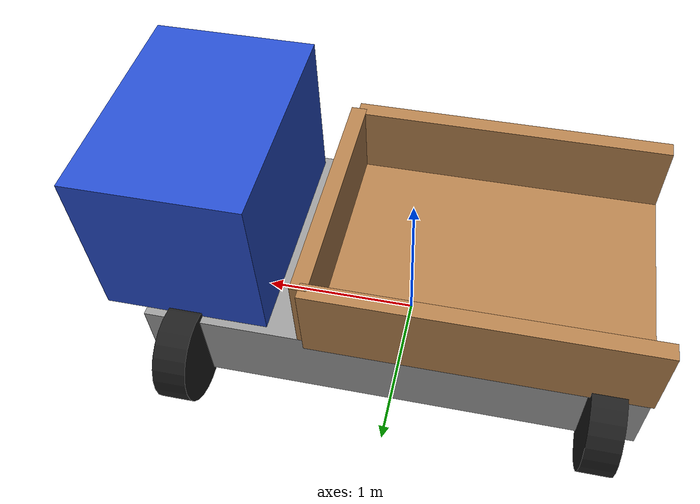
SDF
<?xml version="1.0" ?>
<sdf version="1.6">
  <model name="car_robot">
    <static>false</static>

    <!-- Base Link - Truck Chassis -->
    <link name="base_link">
      <pose>0 0 0.3 0 0 0</pose>
      <inertial>
        <mass>500.0</mass>
        <inertia>
          <ixx>100.0</ixx>
          <ixy>0.0</ixy>
          <ixz>0.0</ixz>
          <iyy>250.0</iyy>
          <iyz>0.0</iyz>
          <izz>300.0</izz>
        </inertia>
      </inertial>

      <!-- Main Chassis -->
      <visual name="chassis">
        <geometry>
          <box>
            <size>3.0 1.5 0.5</size>
          </box>
        </geometry>
        <material>
          <script>
            <uri>file://media/materials/scripts/gazebo.material</uri>
            <name>Gazebo/Grey</name>
          </script>
        </material>
      </visual>

      <!-- Cargo Bed -->
      <visual name="cargo_bed">
        <pose>-0.5 0 0.25 0 0 0</pose>
        <geometry>
          <box>
            <size>2.0 1.5 0.1</size>
          </box>
        </geometry>
        <material>
          <script>
            <uri>file://media/materials/scripts/gazebo.material</uri>
            <name>Gazebo/Wood</name>
          </script>
        </material>
      </visual>

      <!-- Cargo Bed Walls -->
      <visual name="front_wall">
        <pose>0.5 0 0.5 0 0 0</pose>
        <geometry>
          <box>
            <size>0.1 1.5 0.5</size>
          </box>
        </geometry>
        <material>
          <script>
            <uri>file://media/materials/scripts/gazebo.material</uri>
            <name>Gazebo/Wood</name>
          </script>
        </material>
      </visual>

      <visual name="left_wall">
        <pose>-0.5 0.75 0.5 0 0 0</pose>
        <geometry>
          <box>
            <size>2.0 0.1 0.5</size>
          </box>
        </geometry>
        <material>
          <script>
            <uri>file://media/materials/scripts/gazebo.material</uri>
            <name>Gazebo/Wood</name>
          </script>
        </material>
      </visual>

      <visual name="right_wall">
        <pose>-0.5 -0.75 0.5 0 0 0</pose>
        <geometry>
          <box>
            <size>2.0 0.1 0.5</size>
          </box>
        </geometry>
        <material>
          <script>
            <uri>file://media/materials/scripts/gazebo.material</uri>
            <name>Gazebo/Wood</name>
          </script>
        </material>
      </visual>

      <!-- Driver Cabin -->
      <visual name="cabin">
        <pose>1.25 0 0.75 0 0 0</pose>
        <geometry>
          <box>
            <size>1.0 1.4 1.0</size>
          </box>
        </geometry>
        <material>
          <script>
            <uri>file://media/materials/scripts/gazebo.material</uri>
            <name>Gazebo/Blue</name>
          </script>
        </material>
      </visual>

      <collision name="collision">
        <geometry>
          <box>
            <size>3.0 1.5 0.5</size>
          </box>
        </geometry>
      </collision>

      <!-- Sensors -->
      <sensor name="lidar" type="ray">
        <pose>1.5 0 1.0 0 0 0</pose>
        <visualize>true</visualize>
        <update_rate>10</update_rate>
        <ray>
          <scan>
            <horizontal>
              <samples>360</samples>
              <resolution>1</resolution>
              <min_angle>-3.14159</min_angle>
              <max_angle>3.14159</max_angle>
            </horizontal>
          </scan>
          <range>
            <min>0.1</min>
            <max>30.0</max>
            <resolution>0.01</resolution>
          </range>
        </ray>
      </sensor>

      <sensor name="camera" type="camera">
        <pose>1.5 0 1.0 0 0 0</pose>
        <camera>
          <horizontal_fov>1.047</horizontal_fov>
          <image>
            <width>640</width>
            <height>480</height>
          </image>
          <clip>
            <near>0.1</near>
            <far>100</far>
          </clip>
        </camera>
        <always_on>1</always_on>
        <update_rate>30</update_rate>
        <visualize>true</visualize>
      </sensor>

      <sensor name="rear_sonar" type="ray">
        <pose>-1.5 0 0.5 0 0 3.14159</pose>
        <visualize>true</visualize>
        <update_rate>5</update_rate>
        <ray>
          <scan>
            <horizontal>
              <samples>5</samples>
              <resolution>1</resolution>
              <min_angle>-0.2</min_angle>
              <max_angle>0.2</max_angle>
            </horizontal>
          </scan>
          <range>
            <min>0.1</min>
            <max>5.0</max>
            <resolution>0.01</resolution>
          </range>
        </ray>
      </sensor>
    </link>

    <!-- Wheels -->
    <!-- Front Left Wheel -->
    <link name="wheel_fl">
      <pose>1.25 0.8 0.3 0 1.5707 0</pose> <!-- Fixed: 90° around Y -->
      <inertial>
        <mass>20.0</mass>
        <inertia>
          <ixx>0.5</ixx>
          <ixy>0.0</ixy>
          <ixz>0.0</ixz>
          <iyy>0.5</iyy>
          <iyz>0.0</iyz>
          <izz>1.0</izz>
        </inertia>
      </inertial>
      <visual name="visual">
        <geometry>
          <cylinder>
            <radius>0.3</radius>
            <length>0.2</length>
          </cylinder>
        </geometry>
        <material>
          <script>
            <uri>file://media/materials/scripts/gazebo.material</uri>
            <name>Gazebo/Black</name>
          </script>
        </material>
      </visual>
      <collision name="collision">
        <geometry>
          <cylinder>
            <radius>0.3</radius>
            <length>0.2</length>
          </cylinder>
        </geometry>
        <surface>
          <friction>
            <ode>
              <mu>1.0</mu>
              <mu2>1.0</mu2>
            </ode>
          </friction>
        </surface>
      </collision>
    </link>

    <!-- Front Right Wheel -->
    <link name="wheel_fr">
      <pose>1.25 -0.8 0.3 0 1.5707 0</pose> <!-- Fixed: 90° around Y -->
      <inertial>
        <mass>20.0</mass>
        <inertia>
          <ixx>0.5</ixx>
          <ixy>0.0</ixy>
          <ixz>0.0</ixz>
          <iyy>0.5</iyy>
          <iyz>0.0</iyz>
          <izz>1.0</izz>
        </inertia>
      </inertial>
      <visual name="visual">
        <geometry>
          <cylinder>
            <radius>0.3</radius>
            <length>0.2</length>
          </cylinder>
        </geometry>
        <material>
          <script>
            <uri>file://media/materials/scripts/gazebo.material</uri>
            <name>Gazebo/Black</name>
          </script>
        </material>
      </visual>
      <collision name="collision">
        <geometry>
          <cylinder>
            <radius>0.3</radius>
            <length>0.2</length>
          </cylinder>
        </geometry>
        <surface>
          <friction>
            <ode>
              <mu>1.0</mu>
              <mu2>1.0</mu2>
            </ode>
          </friction>
        </surface>
      </collision>
    </link>

    <!-- Rear Left Wheel -->
    <link name="wheel_rl">
      <pose>-1.25 0.8 0.3 0 1.5707 0</pose> <!-- Fixed: 90° around Y -->
      <inertial>
        <mass>20.0</mass>
        <inertia>
          <ixx>0.5</ixx>
          <ixy>0.0</ixy>
          <ixz>0.0</ixz>
          <iyy>0.5</iyy>
          <iyz>0.0</iyz>
          <izz>1.0</izz>
        </inertia>
      </inertial>
      <visual name="visual">
        <geometry>
          <cylinder>
            <radius>0.3</radius>
            <length>0.2</length>
          </cylinder>
        </geometry>
        <material>
          <script>
            <uri>file://media/materials/scripts/gazebo.material</uri>
            <name>Gazebo/Black</name>
          </script>
        </material>
      </visual>
      <collision name="collision">
        <geometry>
          <cylinder>
            <radius>0.3</radius>
            <length>0.2</length>
          </cylinder>
        </geometry>
        <surface>
          <friction>
            <ode>
              <mu>1.0</mu>
              <mu2>1.0</mu2>
            </ode>
          </friction>
        </surface>
      </collision>
    </link>

    <!-- Rear Right Wheel -->
    <link name="wheel_rr">
      <pose>-1.25 -0.8 0.3 0 1.5707 0</pose> <!-- Fixed: 90° around Y -->
      <inertial>
        <mass>20.0</mass>
        <inertia>
          <ixx>0.5</ixx>
          <ixy>0.0</ixy>
          <ixz>0.0</ixz>
          <iyy>0.5</iyy>
          <iyz>0.0</iyz>
          <izz>1.0</izz>
        </inertia>
      </inertial>
      <visual name="visual">
        <geometry>
          <cylinder>
            <radius>0.3</radius>
            <length>0.2</length>
          </cylinder>
        </geometry>
        <material>
          <script>
            <uri>file://media/materials/scripts/gazebo.material</uri>
            <name>Gazebo/Black</name>
          </script>
        </material>
      </visual>
      <collision name="collision">
        <geometry>
          <cylinder>
            <radius>0.3</radius>
            <length>0.2</length>
          </cylinder>
        </geometry>
        <surface>
          <friction>
            <ode>
              <mu>1.0</mu>
              <mu2>1.0</mu2>
            </ode>
          </friction>
        </surface>
      </collision>
    </link>

    <!-- Wheel Joints -->
    <joint name="joint_wheel_fl" type="revolute">
      <parent>base_link</parent>
      <child>wheel_fl</child>
      <axis>
        <xyz>1 0 0</xyz> <!-- Fixed: Rotate around X-axis -->
        <limit>
          <effort>1000</effort>
        </limit>
        <dynamics>
          <damping>1.0</damping>
          <friction>1.0</friction>
        </dynamics>
      </axis>
    </joint>

    <joint name="joint_wheel_fr" type="revolute">
      <parent>base_link</parent>
      <child>wheel_fr</child>
      <axis>
        <xyz>1 0 0</xyz> <!-- Fixed: Rotate around X-axis -->
        <limit>
          <effort>1000</effort>
        </limit>
        <dynamics>
          <damping>1.0</damping>
          <friction>1.0</friction>
        </dynamics>
      </axis>
    </joint>

    <joint name="joint_wheel_rl" type="revolute">
      <parent>base_link</parent>
      <child>wheel_rl</child>
      <axis>
        <xyz>1 0 0</xyz> <!-- Fixed: Rotate around X-axis -->
        <limit>
          <effort>1000</effort>
        </limit>
        <dynamics>
          <damping>1.0</damping>
          <friction>1.0</friction>
        </dynamics>
      </axis>
    </joint>

    <joint name="joint_wheel_rr" type="revolute">
      <parent>base_link</parent>
      <child>wheel_rr</child>
      <axis>
        <xyz>1 0 0</xyz> <!-- Fixed: Rotate around X-axis -->
        <limit>
          <effort>1000</effort>
        </limit>
        <dynamics>
          <damping>1.0</damping>
          <friction>1.0</friction>
        </dynamics>
      </axis>
    </joint>

    <!-- Differential Drive Plugin -->
    <plugin filename="gz-sim-diff-drive-system" name="gz::sim::systems::DiffDrive">
      <left_joint>joint_wheel_fr</left_joint> <!-- Fixed: Swapped left/right -->
      <left_joint>joint_wheel_rr</left_joint> <!-- Fixed: Swapped left/right -->
      <right_joint>joint_wheel_fl</right_joint> <!-- Fixed: Swapped left/right -->
      <right_joint>joint_wheel_rl</right_joint> <!-- Fixed: Swapped left/right -->
      <wheel_separation>1.6</wheel_separation>
      <wheel_radius>0.3</wheel_radius>
      <odom_publish_frequency>10</odom_publish_frequency>
      <topic>/car_robot/cmd_vel</topic>
    </plugin>

  </model>
</sdf>
